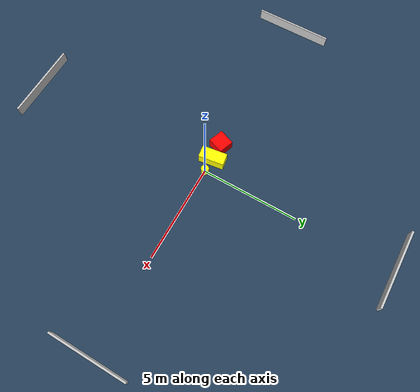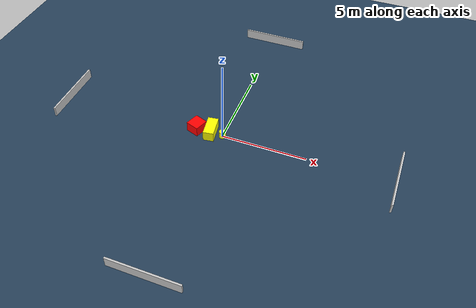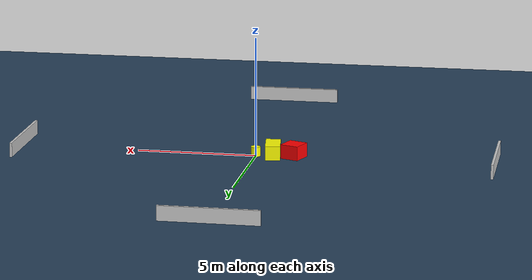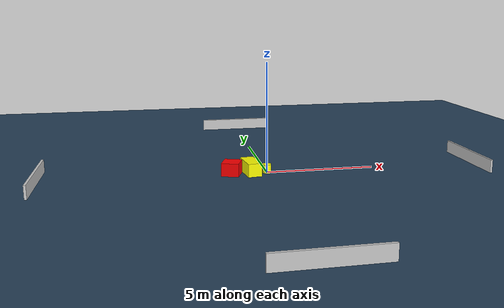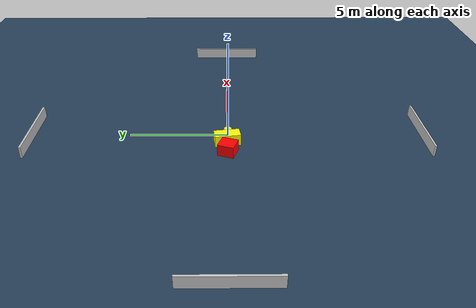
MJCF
<?xml version="1.0" ?>
<mujoco model="generated_environment">
  <option timestep="0.01" integrator="RK4" cone="elliptic"/>
  <default>
    <geom density="1"/>
  </default>
  <asset>
    <texture builtin="gradient" height="3072" name="skybox" rgb1="0.3 0.5 0.7" rgb2="0 0 0" type="skybox" width="512"/>
    <texture builtin="checker" height="300" name="groundplane" rgb1="0.2 0.3 0.4" rgb2="0.1 0.2 0.3" type="2d" width="300"/>
    <material name="groundplane" reflectance="0.2" texrepeat="5 5" texture="groundplane"/>
  </asset>
  <worldbody>
    <light dir="0 0 -1" directional="true" pos="0 0 1.5"/>
    <geom condim="3" friction="0.5 0.005 0.001" material="groundplane" name="floor" pos="0 0 0" size="0 0 0.05" type="plane"/>
    <body name="walls">
      <geom name="wall_1" condim="4" pos="-10.0 0.0 0.3" rgba="0.800000011920929 0.800000011920929 0.800000011920929 1.0" size="0.05 2.0 0.3" type="box"/>
      <geom name="wall_2" condim="4" pos="10.0 0.0 0.3" rgba="0.800000011920929 0.800000011920929 0.800000011920929 1.0" size="0.05 2.0 0.3" type="box"/>
      <geom name="wall_3" condim="4" pos="0.0 -10.0 0.3" rgba="0.800000011920929 0.800000011920929 0.800000011920929 1.0" size="2.0 0.05 0.3" type="box"/>
      <geom name="wall_4" condim="4" pos="0.0 10.0 0.3" rgba="0.800000011920929 0.800000011920929 0.800000011920929 1.0" size="2.0 0.05 0.3" type="box"/>
    </body>
    <body name="robot">
      <joint name="joint_x" type="slide" pos="0 0 0" axis="1 0 0"/>
      <joint name="joint_y" type="slide" pos="0 0 0" axis="0 1 0"/>
      <geom name="robot" type="cylinder" pos="0.0 0.0 0.2" size="0.2 0.2 0.0" mass="5.0" friction="1.0 0.005 0.0001" condim="4" rgba="1.0 1.0 0.0 1.0"/>
    </body>
    <body name="obstacle_1_movable">
      <geom name="obstacle_1_movable" condim="4" pos="-0.7382172549828543 0.03418283048598934 0.3" euler="0 0 97.99727007791539" friction="0.0 0.005 0.001" rgba="1.0 1.0 0.0 1.0" size="0.6516556716755657 0.3111738827984167 0.3" type="box" mass="0.1"/>
      <joint type="free"/>
    </body>
    <body name="obstacle_2_static">
      <geom name="obstacle_2_static" condim="4" pos="-1.6121460923079938 0.00794817330604544 0.3" euler="0 0 249.87021445505638" friction="0.0 0.005 0.001" rgba="1.0 0.0 0.0 1.0" size="0.41604161249550414 0.39526067014376676 0.3" type="box"/>
    </body>
  </worldbody>
  <actuator>
    <motor name="actuator_x" joint="joint_x" gear="1" ctrlrange="-1 1"/>
    <motor name="actuator_y" joint="joint_y" gear="1" ctrlrange="-1 1"/>
  </actuator>
</mujoco>
